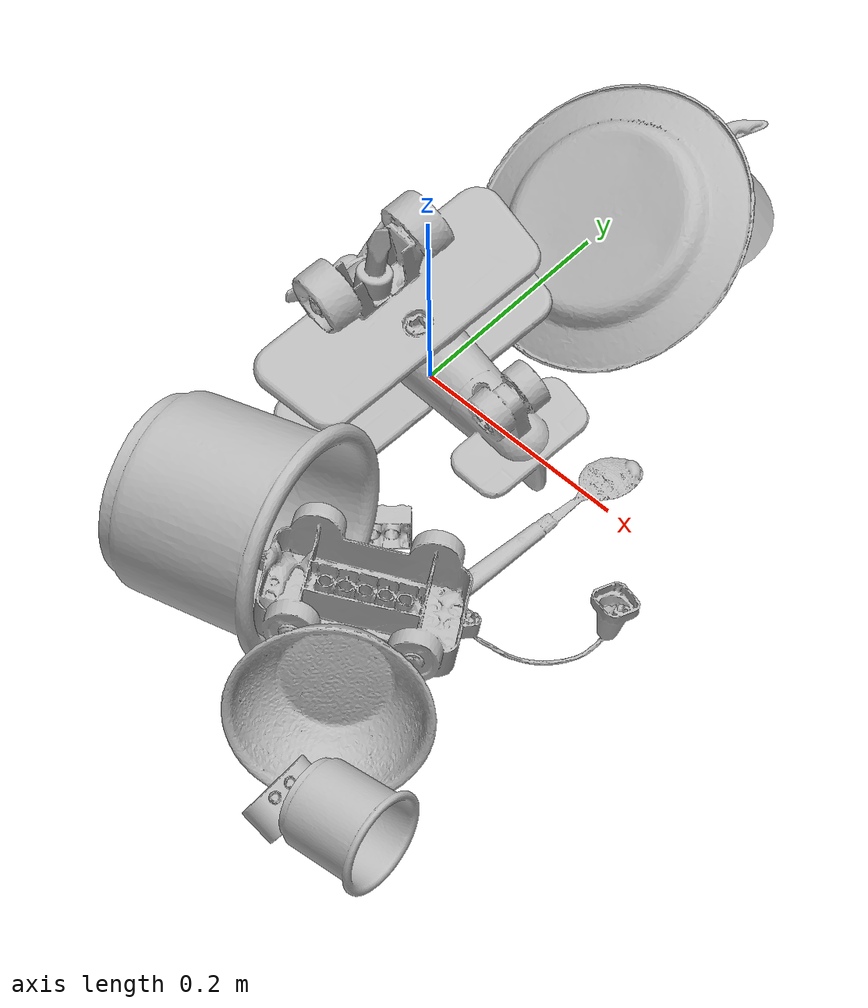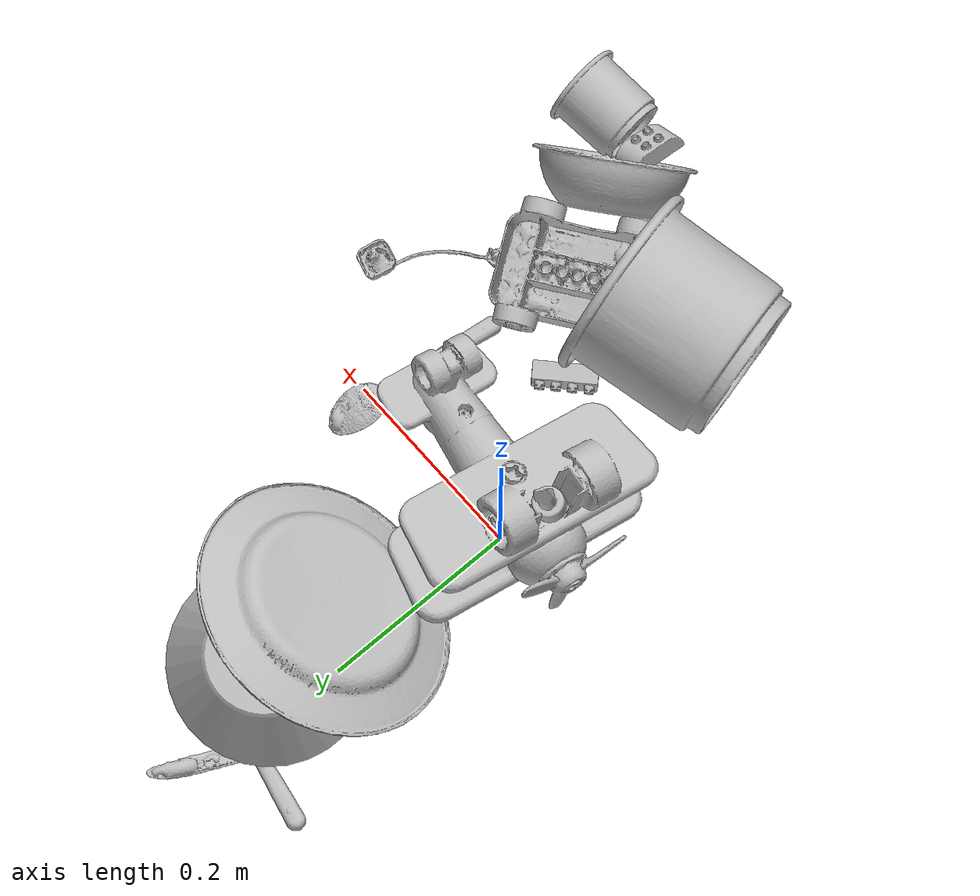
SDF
<sdf version="1.4">
  <world name="default">
    <light name="light1" type="point">
      <pose>0 0 1 0 0 0</pose>
      <diffuse>3 3 3 1</diffuse>
      <specular>3 3 3 1</specular>
    </light>
    <light name="light2" type="point">
      <pose>0 0.5 2 0 0 0</pose>
      <diffuse>1 1 1 1</diffuse>
      <specular>1 1 1 1</specular>
    </light>
    <light name="light3" type="point">
      <pose>0 0.5 2 0 0 0</pose>
      <diffuse>3 3 3 1</diffuse>
      <specular>3 3 3 1</specular>
    </light>
    <scene>
      <ambient>0.7 0.7 0.7</ambient>
    </scene>
    <model name="plate1">
      <link name="link_plate1">
        <collision name="default">
          <geometry>
            <mesh>
              <uri>model://plate/collision_meshes/collision.obj</uri>
              <scale>1.0 1.0 1.0</scale>
            </mesh>
          </geometry>
          <surface>
            <friction>
              <ode>
                <mu>0.5</mu>
                <mu2>0.5</mu2>
              </ode>
            </friction>
          <contact>
        <ode>
            <max_vel>0</max_vel>
            <min_depth>0.0001</min_depth>
            <kp>1e8</kp>
        </ode>
    </contact></surface>
        </collision>
        <visual name="default">
          <geometry>
            <mesh>
              <uri>model://plate/visual_meshes/visual.dae</uri>
              <scale>1.0 1.0 1.0</scale>
            </mesh>
          </geometry>
        </visual>
        <inertial>
          <mass>0.22833794355392456</mass>
          <pose>-0.000604461005423218 0.00027825840516015887 -0.0010561991948634386 0.0022188074693480237 -0.003225470002654536 0.4526028307495764</pose>
          <inertia>
            <ixx>0.0010681693</ixx>
            <iyy>0.0010579526</iyy>
            <izz>0.0020891798</izz>
            <ixy>0</ixy>
            <ixz>0</ixz>
            <iyz>0</iyz>
          </inertia>
        </inertial>
      </link>
      <pose>0.03619781881570816 0.17662151157855988 0.07701905816793442 2.856168252867411 0.45682237890970984 -2.461210129249516</pose>
    </model>
    <model name="cup1">
      <link name="link_cup1">
        <collision name="default">
          <geometry>
            <mesh>
              <uri>model://i_cups/collision_meshes/collision.obj</uri>
              <scale>2.0 2.0 2.0</scale>
            </mesh>
          </geometry>
          <surface>
            <friction>
              <ode>
                <mu>0.5</mu>
                <mu2>0.5</mu2>
              </ode>
            </friction>
          <contact>
        <ode>
            <max_vel>0</max_vel>
            <min_depth>0.0001</min_depth>
            <kp>1e8</kp>
        </ode>
    </contact></surface>
        </collision>
        <visual name="default">
          <geometry>
            <mesh>
              <uri>model://i_cups/visual_meshes/visual.dae</uri>
              <scale>2.0 2.0 2.0</scale>
            </mesh>
          </geometry>
        </visual>
        <inertial>
          <mass>0.4681873917579651</mass>
          <pose>0.00022480281768366694 0.00033594679553061724 -0.001715805265121162 -0.028982833374769763 -0.039873302367341296 -0.3459182567321849</pose>
          <inertia>
            <ixx>0.0025928493</ixx>
            <iyy>0.0026156942</iyy>
            <izz>0.0028979292</izz>
            <ixy>0</ixy>
            <ixz>0</ixz>
            <iyz>0</iyz>
          </inertia>
        </inertial>
      </link>
      <pose>0.028151674196124077 -0.24869586527347565 0.08943745493888855 1.44769465578145 -0.0956827678262418 1.8265475858375568</pose>
    </model>
    <model name="silverware1">
      <link name="link_silverware1">
        <collision name="default">
          <geometry>
            <mesh>
              <uri>model://fork/collision_meshes/collision.obj</uri>
              <scale>1.0 1.0 1.0</scale>
            </mesh>
          </geometry>
          <surface>
            <friction>
              <ode>
                <mu>0.5</mu>
                <mu2>0.5</mu2>
              </ode>
            </friction>
          <contact>
        <ode>
            <max_vel>0</max_vel>
            <min_depth>0.0001</min_depth>
            <kp>1e8</kp>
        </ode>
    </contact></surface>
        </collision>
        <visual name="default">
          <geometry>
            <mesh>
              <uri>model://fork/visual_meshes/visual.dae</uri>
              <scale>1.0 1.0 1.0</scale>
            </mesh>
          </geometry>
        </visual>
        <inertial>
          <mass>0.027571624144911766</mass>
          <pose>-0.02957003377377987 0.00046588233090005815 0.00032188609475269914 -0.013550958023284024 -0.010977835737993834 0.014453901364285019</pose>
          <inertia>
            <ixx>9.665413e-07</ixx>
            <iyy>7.198156e-05</iyy>
            <izz>7.24139e-05</izz>
            <ixy>0</ixy>
            <ixz>0</ixz>
            <iyz>0</iyz>
          </inertia>
        </inertial>
      </link>
      <pose>0.0011429805308580399 0.30539557337760925 0.005225767381489277 -0.01736421220254856 0.050076188099460954 -0.20155331343785085</pose>
    </model>
    <model name="silverware2">
      <link name="link_silverware2">
        <collision name="default">
          <geometry>
            <mesh>
              <uri>model://spoon/collision_meshes/collision.obj</uri>
              <scale>1.0 1.0 1.0</scale>
            </mesh>
          </geometry>
          <surface>
            <friction>
              <ode>
                <mu>0.5</mu>
                <mu2>0.5</mu2>
              </ode>
            </friction>
          <contact>
        <ode>
            <max_vel>0</max_vel>
            <min_depth>0.0001</min_depth>
            <kp>1e8</kp>
        </ode>
    </contact></surface>
        </collision>
        <visual name="default">
          <geometry>
            <mesh>
              <uri>model://spoon/visual_meshes/visual.dae</uri>
              <scale>1.0 1.0 1.0</scale>
            </mesh>
          </geometry>
        </visual>
        <inertial>
          <mass>0.026229728013277054</mass>
          <pose>-0.005526318680495024 -0.001603417913429439 -0.0007271656068041921 0.03521671072465583 -0.039065837568760656 0.006150610113583586</pose>
          <inertia>
            <ixx>1.4589405e-06</ixx>
            <iyy>9.980327e-05</iyy>
            <izz>0.00010052276</izz>
            <ixy>0</ixy>
            <ixz>0</ixz>
            <iyz>0</iyz>
          </inertia>
        </inertial>
      </link>
      <pose>0.1793658286333084 -0.0455806702375412 0.010133787989616394 3.1049248848154956 -0.06197628454652983 1.4600355376542937</pose>
    </model>
    <model name="silverware3">
      <link name="link_silverware3">
        <collision name="default">
          <geometry>
            <mesh>
              <uri>model://knife/collision_meshes/collision.obj</uri>
              <scale>1.0 1.0 1.0</scale>
            </mesh>
          </geometry>
          <surface>
            <friction>
              <ode>
                <mu>0.5</mu>
                <mu2>0.5</mu2>
              </ode>
            </friction>
          <contact>
        <ode>
            <max_vel>0</max_vel>
            <min_depth>0.0001</min_depth>
            <kp>1e8</kp>
        </ode>
    </contact></surface>
        </collision>
        <visual name="default">
          <geometry>
            <mesh>
              <uri>model://knife/visual_meshes/visual.dae</uri>
              <scale>1.0 1.0 1.0</scale>
            </mesh>
          </geometry>
        </visual>
        <inertial>
          <mass>0.02346421591937542</mass>
          <pose>-0.02378525584936142 0.0015275125624611974 5.062017953605391e-05 0.07305400797241687 0.017248417900584085 -0.007409820985288758</pose>
          <inertia>
            <ixx>6.6600956e-07</ixx>
            <iyy>9.0145724e-05</iyy>
            <izz>9.036023e-05</izz>
            <ixy>0</ixy>
            <ixz>0</ixz>
            <iyz>0</iyz>
          </inertia>
        </inertial>
      </link>
      <pose>-0.01109202392399311 0.3036297857761383 0.01366252638399601 -3.0969446429021756 -0.05827383484095432 1.1532405775779202</pose>
    </model>
    <model name="cup3">
      <link name="link_cup3">
        <collision name="default">
          <geometry>
            <mesh>
              <uri>model://g_cups/collision_meshes/collision.obj</uri>
              <scale>1.0 1.0 1.0</scale>
            </mesh>
          </geometry>
          <surface>
            <friction>
              <ode>
                <mu>0.5</mu>
                <mu2>0.5</mu2>
              </ode>
            </friction>
          <contact>
        <ode>
            <max_vel>0</max_vel>
            <min_depth>0.0001</min_depth>
            <kp>1e8</kp>
        </ode>
    </contact></surface>
        </collision>
        <visual name="default">
          <geometry>
            <mesh>
              <uri>model://g_cups/visual_meshes/visual.dae</uri>
              <scale>1.0 1.0 1.0</scale>
            </mesh>
          </geometry>
        </visual>
        <inertial>
          <mass>0.061065707355737686</mass>
          <pose>-0.0007946277037262917 -4.2064726585522294e-05 -0.002132938476279378 -0.21381528234109023 -0.31410608856426947 0.31118675593786127</pose>
          <inertia>
            <ixx>7.1277376e-05</ixx>
            <iyy>7.10349e-05</iyy>
            <izz>7.383109e-05</izz>
            <ixy>0</ixy>
            <ixz>0</ixz>
            <iyz>0</iyz>
          </inertia>
        </inertial>
      </link>
      <pose>0.2571074068546295 -0.36063939332962036 0.04024157300591469 1.4622341599678368 -0.007896483638538029 1.6733557022636496</pose>
    </model>
    <model name="cup4">
      <link name="link_cup4">
        <collision name="default">
          <geometry>
            <mesh>
              <uri>model://mug/collision_meshes/collision.obj</uri>
              <scale>1.0 1.0 1.0</scale>
            </mesh>
          </geometry>
          <surface>
            <friction>
              <ode>
                <mu>0.5</mu>
                <mu2>0.5</mu2>
              </ode>
            </friction>
          <contact>
        <ode>
            <max_vel>0</max_vel>
            <min_depth>0.0001</min_depth>
            <kp>1e8</kp>
        </ode>
    </contact></surface>
        </collision>
        <visual name="default">
          <geometry>
            <mesh>
              <uri>model://mug/visual_meshes/visual.dae</uri>
              <scale>1.0 1.0 1.0</scale>
            </mesh>
          </geometry>
        </visual>
        <inertial>
          <mass>0.23807048797607422</mass>
          <pose>0.009571674279868603 0.0008143257582560182 -0.010947330854833126 -0.1298314387661624 0.08737745525079747 0.05507303490292968</pose>
          <inertia>
            <ixx>0.00023648023</ixx>
            <iyy>0.0002641344</iyy>
            <izz>0.00030547503</izz>
            <ixy>0</ixy>
            <ixz>0</ixz>
            <iyz>0</iyz>
          </inertia>
        </inertial>
      </link>
      <pose>0.04677381366491318 0.24905052781105042 0.037628304213285446 -1.467989859079605 -0.6051952954222666 -2.9232730533558016</pose>
    </model>
    <model name="cup5">
      <link name="link_cup5">
        <collision name="default">
          <geometry>
            <mesh>
              <uri>model://cup_small/collision_meshes/collision.obj</uri>
              <scale>1.0 1.0 1.0</scale>
            </mesh>
          </geometry>
          <surface>
            <friction>
              <ode>
                <mu>0.5</mu>
                <mu2>0.5</mu2>
              </ode>
            </friction>
          <contact>
        <ode>
            <max_vel>0</max_vel>
            <min_depth>0.0001</min_depth>
            <kp>1e8</kp>
        </ode>
    </contact></surface>
        </collision>
        <visual name="default">
          <geometry>
            <mesh>
              <uri>model://cup_small/visual_meshes/visual.dae</uri>
              <scale>1.0 1.0 1.0</scale>
            </mesh>
          </geometry>
        </visual>
        <inertial>
          <mass>0.034257128834724426</mass>
          <pose>0.00010482469951966777 -0.00033778377110138535 -0.01074282731860876 -0.011493012610900502 -0.015280351102743797 -0.5058271067899499</pose>
          <inertia>
            <ixx>2.0170073e-05</ixx>
            <iyy>2.0274121e-05</iyy>
            <izz>9.106847e-06</izz>
            <ixy>0</ixy>
            <ixz>0</ixz>
            <iyz>0</iyz>
          </inertia>
        </inertial>
      </link>
      <pose>0.037578143179416656 0.18027850985527039 0.02027583122253418 1.3377169983311674 -1.2100969718225383 2.067896780333904</pose>
    </model>
    <model name="bowl1">
      <link name="link_bowl1">
        <collision name="default">
          <geometry>
            <mesh>
              <uri>model://bowl/collision_meshes/collision.obj</uri>
              <scale>1.0 1.0 1.0</scale>
            </mesh>
          </geometry>
          <surface>
            <friction>
              <ode>
                <mu>0.5</mu>
                <mu2>0.5</mu2>
              </ode>
            </friction>
          <contact>
        <ode>
            <max_vel>0</max_vel>
            <min_depth>0.0001</min_depth>
            <kp>1e8</kp>
        </ode>
    </contact></surface>
        </collision>
        <visual name="default">
          <geometry>
            <mesh>
              <uri>model://bowl/visual_meshes/visual.dae</uri>
              <scale>1.0 1.0 1.0</scale>
            </mesh>
          </geometry>
        </visual>
        <inertial>
          <mass>0.06465846300125122</mass>
          <pose>0.0002044529392151162 -0.0010302059818059206 -0.0008042643894441426 -0.015764115524798613 0.014546769889283702 0.7140385686011532</pose>
          <inertia>
            <ixx>0.00014852564</ixx>
            <iyy>0.000145207</iyy>
            <izz>0.00024987117</izz>
            <ixy>0</ixy>
            <ixz>0</ixz>
            <iyz>0</iyz>
          </inertia>
        </inertial>
      </link>
      <pose>0.1867016702890396 -0.3024948537349701 0.06271166354417801 1.1329954876540544 0.06663992346171818 0.6461423879855877</pose>
    </model>
    <model name="bowl2">
      <link name="link_bowl2">
        <collision name="default">
          <geometry>
            <mesh>
              <uri>model://bowl_a/collision_meshes/collision.obj</uri>
              <scale>1.0 1.0 1.0</scale>
            </mesh>
          </geometry>
          <surface>
            <friction>
              <ode>
                <mu>0.5</mu>
                <mu2>0.5</mu2>
              </ode>
            </friction>
          <contact>
        <ode>
            <max_vel>0</max_vel>
            <min_depth>0.0001</min_depth>
            <kp>1e8</kp>
        </ode>
    </contact></surface>
        </collision>
        <visual name="default">
          <geometry>
            <mesh>
              <uri>model://bowl_a/visual_meshes/visual.dae</uri>
              <scale>1.0 1.0 1.0</scale>
            </mesh>
          </geometry>
        </visual>
        <inertial>
          <mass>0.4949932396411896</mass>
          <pose>0.00027867621975019574 4.730939326691441e-05 -0.0013765293406322598 -0.0009805412802391578 -0.001093824733375575 -0.19123603072484788</pose>
          <inertia>
            <ixx>0.0014092687</ixx>
            <iyy>0.0014179207</iyy>
            <izz>0.0025064375</izz>
            <ixy>0</ixy>
            <ixz>0</ixz>
            <iyz>0</iyz>
          </inertia>
        </inertial>
      </link>
      <pose>0.03685586154460907 0.25109100341796875 0.06309239566326141 -3.0800235533968165 0.1707199252178049 2.6005064968003913</pose>
    </model>
    <model name="toy1">
      <link name="link_toy1">
        <collision name="default">
          <geometry>
            <mesh>
              <uri>model://a_toy_airplane/collision_meshes/collision.obj</uri>
              <scale>1.0 1.0 1.0</scale>
            </mesh>
          </geometry>
          <surface>
            <friction>
              <ode>
                <mu>0.5</mu>
                <mu2>0.5</mu2>
              </ode>
            </friction>
          <contact>
        <ode>
            <max_vel>0</max_vel>
            <min_depth>0.0001</min_depth>
            <kp>1e8</kp>
        </ode>
    </contact></surface>
        </collision>
        <visual name="default">
          <geometry>
            <mesh>
              <uri>model://a_toy_airplane/visual_meshes/visual.dae</uri>
              <scale>1.0 1.0 1.0</scale>
            </mesh>
          </geometry>
        </visual>
        <inertial>
          <mass>1.5726872682571411</mass>
          <pose>0.025165090337395668 -0.003707318101078272 -0.0011962441494688392 -0.012016975653996446 -0.14663502644886817 0.00414906395026872</pose>
          <inertia>
            <ixx>0.0057111816</ixx>
            <iyy>0.008322349</iyy>
            <izz>0.009744448</izz>
            <ixy>0</ixy>
            <ixz>0</ixz>
            <iyz>0</iyz>
          </inertia>
        </inertial>
      </link>
      <pose>0.03461446985602379 -0.01948312297463417 0.07483698427677155 2.950099271975669 -0.1489771193007976 3.044007963996569</pose>
    </model>
    <model name="toy2">
      <link name="link_toy2">
        <collision name="default">
          <geometry>
            <mesh>
              <uri>model://g_lego_duplo/collision_meshes/collision.obj</uri>
              <scale>1.0 1.0 1.0</scale>
            </mesh>
          </geometry>
          <surface>
            <friction>
              <ode>
                <mu>0.5</mu>
                <mu2>0.5</mu2>
              </ode>
            </friction>
          <contact>
        <ode>
            <max_vel>0</max_vel>
            <min_depth>0.0001</min_depth>
            <kp>1e8</kp>
        </ode>
    </contact></surface>
        </collision>
        <visual name="default">
          <geometry>
            <mesh>
              <uri>model://g_lego_duplo/visual_meshes/visual.dae</uri>
              <scale>1.0 1.0 1.0</scale>
            </mesh>
          </geometry>
        </visual>
        <inertial>
          <mass>0.27239978313446045</mass>
          <pose>-0.05004768446087837 0.0017554647056385875 0.003880675882101059 0.010962999716487856 0.03810827607734427 -0.09653019061870628</pose>
          <inertia>
            <ixx>0.00039471043</ixx>
            <iyy>0.0011933373</iyy>
            <izz>0.0014929089</izz>
            <ixy>0</ixy>
            <ixz>0</ixz>
            <iyz>0</iyz>
          </inertia>
        </inertial>
      </link>
      <pose>0.18533317744731903 -0.18291333317756653 0.045447953045368195 2.9227235216693566 0.13848124907925596 0.569501429823846</pose>
    </model>
    <model name="toy3">
      <link name="link_toy3">
        <collision name="default">
          <geometry>
            <mesh>
              <uri>model://e_toy_airplane/collision_meshes/collision.obj</uri>
              <scale>1.0 1.0 1.0</scale>
            </mesh>
          </geometry>
          <surface>
            <friction>
              <ode>
                <mu>0.5</mu>
                <mu2>0.5</mu2>
              </ode>
            </friction>
          <contact>
        <ode>
            <max_vel>0</max_vel>
            <min_depth>0.0001</min_depth>
            <kp>1e8</kp>
        </ode>
    </contact></surface>
        </collision>
        <visual name="default">
          <geometry>
            <mesh>
              <uri>model://e_toy_airplane/visual_meshes/visual.dae</uri>
              <scale>1.0 1.0 1.0</scale>
            </mesh>
          </geometry>
        </visual>
        <inertial>
          <mass>0.02767481654882431</mass>
          <pose>0.00011740472837118432 -2.2482989152194932e-05 -0.011187202297151089 0.005518508312800945 0.009228282632666047 0.1504154330375105</pose>
          <inertia>
            <ixx>8.446671e-06</ixx>
            <iyy>8.360266e-06</iyy>
            <izz>2.5385568e-06</izz>
            <ixy>0</ixy>
            <ixz>0</ixz>
            <iyz>0</iyz>
          </inertia>
        </inertial>
      </link>
      <pose>-0.03436412289738655 -0.023962754756212234 0.14911334216594696 0.14035177653576422 0.0978703338972485 2.384981602835831</pose>
    </model>
    <model name="toy4">
      <link name="link_toy4">
        <collision name="default">
          <geometry>
            <mesh>
              <uri>model://c_lego_duplo/collision_meshes/collision.obj</uri>
              <scale>1.0 1.0 1.0</scale>
            </mesh>
          </geometry>
          <surface>
            <friction>
              <ode>
                <mu>0.5</mu>
                <mu2>0.5</mu2>
              </ode>
            </friction>
          <contact>
        <ode>
            <max_vel>0</max_vel>
            <min_depth>0.0001</min_depth>
            <kp>1e8</kp>
        </ode>
    </contact></surface>
        </collision>
        <visual name="default">
          <geometry>
            <mesh>
              <uri>model://c_lego_duplo/visual_meshes/visual.dae</uri>
              <scale>1.0 1.0 1.0</scale>
            </mesh>
          </geometry>
        </visual>
        <inertial>
          <mass>0.027596205472946167</mass>
          <pose>0.0003164597146678716 0.00019464619981590658 0.0010453155264258385 -0.011520800817134696 0.005900104067849837 0.03110033537421094</pose>
          <inertia>
            <ixx>1.0619538e-05</ixx>
            <iyy>3.3922634e-06</iyy>
            <izz>1.2410018e-05</izz>
            <ixy>0</ixy>
            <ixz>0</ixz>
            <iyz>0</iyz>
          </inertia>
        </inertial>
      </link>
      <pose>0.07777830958366394 -0.14952605962753296 0.017140677198767662 -2.9582929670679885 1.430823360789835 -0.631270620095617</pose>
    </model>
    <model name="toy5">
      <link name="link_toy5">
        <collision name="default">
          <geometry>
            <mesh>
              <uri>model://a_lego_duplo/collision_meshes/collision.obj</uri>
              <scale>1.0 1.0 1.0</scale>
            </mesh>
          </geometry>
          <surface>
            <friction>
              <ode>
                <mu>0.5</mu>
                <mu2>0.5</mu2>
              </ode>
            </friction>
          <contact>
        <ode>
            <max_vel>0</max_vel>
            <min_depth>0.0001</min_depth>
            <kp>1e8</kp>
        </ode>
    </contact></surface>
        </collision>
        <visual name="default">
          <geometry>
            <mesh>
              <uri>model://a_lego_duplo/visual_meshes/visual.dae</uri>
              <scale>1.0 1.0 1.0</scale>
            </mesh>
          </geometry>
        </visual>
        <inertial>
          <mass>0.011767913587391376</mass>
          <pose>-0.00011337622709106654 0.00018517576972953975 0.0003692608152050525 -0.0141170192796563 -0.00012565406274383194 6.140908251533293e-05</pose>
          <inertia>
            <ixx>1.5087408e-06</ixx>
            <iyy>3.3799095e-06</iyy>
            <izz>4.186769e-06</izz>
            <ixy>0</ixy>
            <ixz>0</ixz>
            <iyz>0</iyz>
          </inertia>
        </inertial>
      </link>
      <pose>0.20594528317451477 -0.3701461851596832 0.022127605974674225 0.4540978665621732 -0.16231203673836064 1.5431151867623982</pose>
    </model>
  <physics type="ode">
      <max_contacts>50</max_contacts>
      <ode>
        <solver>
          <type>quick</type>
          <iters>75</iters>
        </solver>
        <constraints>
          <contact_max_correcting_vel>0</contact_max_correcting_vel>
          <contact_surface_layer>0</contact_surface_layer>
        </constraints>
      </ode>
    </physics></world>
</sdf>
